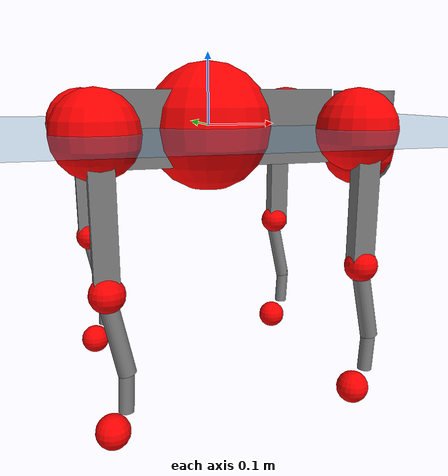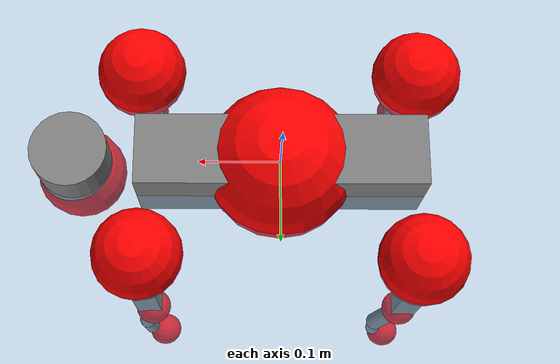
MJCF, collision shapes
<mujoco model="go2">
  <compiler angle="radian" assetdir="assets" balanceinertia="true" inertiafromgeom="false"/>

  <option timestep="0.005" density="1.2" viscosity="2e-05"/>

  <size nkey="1"/>

  <visual>
    <quality shadowsize="8192"/>
    <map shadowclip="0.5"/>
  </visual>

  <default>
    <default class="/">
      <geom contype="0" conaffinity="0" group="1" solref="-1000 -80"/>
      <site size="0.01 0.005 0.005" group="5"/>
      <general forcelimited="true" biastype="affine" gainprm="20" biasprm="0 -20 -0.5"/>
      <default class="go2">
        <joint armature="0.01" damping="0.01" frictionloss="0.2"/>
        <geom condim="1" margin="0.001"/>
        <default class="visual">
          <geom type="mesh" group="2"/>
        </default>
        <default class="collision">
          <geom group="3"/>
          <default class="foot">
            <geom size="0.022 0 0" condim="6" priority="1" friction="0.8 0.02 0.01" solimp="0.015 1 0.022"/>
          </default>
        </default>
        <default class="reward_collision_sphere">
          <geom group="5" rgba="1 0 0 1"/>
        </default>
      </default>
    </default>
  </default>

  <asset>
    <texture type="skybox" colorspace="auto" name="//unnamed_texture_0" builtin="gradient" rgb1="0.95 0.95 0.95" rgb2="0.95 0.95 0.95" width="100" height="600"/>
    <texture type="2d" colorspace="auto" name="texplane" builtin="checker" rgb1="0.345 0.575 0.748" rgb2="0.345 0.575 0.748" markrgb="1 1 1" width="512" height="512"/>
    <material name="MatPlane" class="/" texture="texplane" texuniform="true" texrepeat="2 2" specular="0.9"/>
    <material name="metal" class="/" rgba="0.9 0.95 0.95 1"/>
    <material name="black" class="/" rgba="0 0 0 1"/>
    <material name="white" class="/"/>
    <material name="gray" class="/" rgba="0.671705 0.692426 0.77427 1"/>
    <mesh name="base_0" class="/" file="base_0.obj"/>
    <mesh name="base_1" class="/" file="base_1.obj"/>
    <mesh name="base_2" class="/" file="base_2.obj"/>
    <mesh name="base_3" class="/" file="base_3.obj"/>
    <mesh name="base_4" class="/" file="base_4.obj"/>
    <mesh name="hip_0" class="/" file="hip_0.obj"/>
    <mesh name="hip_1" class="/" file="hip_1.obj"/>
    <mesh name="thigh_0" class="/" file="thigh_0.obj"/>
    <mesh name="thigh_1" class="/" file="thigh_1.obj"/>
    <mesh name="thigh_mirror_0" class="/" file="thigh_mirror_0.obj"/>
    <mesh name="thigh_mirror_1" class="/" file="thigh_mirror_1.obj"/>
    <mesh name="calf_0" class="/" file="calf_0.obj"/>
    <mesh name="calf_1" class="/" file="calf_1.obj"/>
    <mesh name="calf_mirror_0" class="/" file="calf_mirror_0.obj"/>
    <mesh name="calf_mirror_1" class="/" file="calf_mirror_1.obj"/>
    <mesh name="foot" class="/" file="foot.obj"/>
  </asset>

  <worldbody>
    <geom name="floor" class="/" size="100 100 0.125" type="plane" group="0" material="MatPlane"/>
    <light name="toplight_shadow" class="/" pos="0 0 5" dir="0.0990148 0.0990148 -0.990148" type="directional" ambient="0.04 0.04 0.04" diffuse="0.55 0.55 0.55" specular="0.12 0.12 0.12"/>
    <light name="toplight_fill" class="/" pos="0 0 5" dir="0.0990148 0.0990148 -0.990148" type="directional" castshadow="false" ambient="0.04 0.04 0.04" diffuse="0.3 0.3 0.3" specular="0.08 0.08 0.08"/>
    <body name="trunk" childclass="go2" pos="0.000150002 6.17512e-06 -0.00271565" quat="1 -6.69445e-05 -2.10473e-05 8.34008e-05">
      <inertial pos="0.0178159 0.00231261 -0.00194033" quat="-0.000970367 0.713253 -0.00171624 0.700904" mass="5.21608" diaginertia="0.0574774 0.0987591 0.0120433"/>
      <joint name="//unnamed_joint_0" type="free" armature="0" damping="0" frictionloss="0"/>
      <geom name="//unnamed_geom_1" class="visual" material="black" mesh="base_0"/>
      <geom name="//unnamed_geom_2" class="visual" material="black" mesh="base_1"/>
      <geom name="//unnamed_geom_3" class="visual" material="black" mesh="base_2"/>
      <geom name="//unnamed_geom_4" class="visual" material="white" mesh="base_3"/>
      <geom name="//unnamed_geom_5" class="visual" material="gray" mesh="base_4"/>
      <geom name="trunk_1" class="collision" size="0.173082 0.0430175 0.0524492" type="box"/>
      <geom name="trunk_2" class="collision" size="0.046008 0.0414072" pos="0.251085 0 0.00871815" type="cylinder"/>
      <geom name="trunk_3" class="collision" size="0.0432476" pos="0.258133 0 -0.0523089"/>
      <geom name="//unnamed_geom_9" class="reward_collision_sphere" size="0.0920161"/>
      <geom name="//unnamed_geom_10" class="reward_collision_sphere" size="0.0552096" pos="0.24668 0 -0.0392317"/>
      <site name="imu" pos="-0.0200464 -0.0103355 0.0407075" size="0.00920161"/>
      <camera name="track" pos="0 -2.01534 0" quat="0.707107 0.707107 0 0" mode="trackcom"/>
      <camera name="ego_camera" pos="0.274872 0 0.0392317" quat="-0.5 -0.5 0.5 0.5"/>
      <body name="FL_hip" pos="0.17052 0.0448206 0.00129943" quat="1 8.7208e-06 -1.16088e-05 1.51439e-05">
        <inertial pos="-0.00741209 0.00216162 -0.00214325" quat="0.494208 0.502729 0.503075 0.499938" mass="0.530551" diaginertia="0.000468664 0.000604269 0.000248428"/>
        <joint name="FL_hip_joint" pos="0 0 0" axis="0.999987 -0.00402412 -0.00310335" range="-1.0725 1.04737" armature="0.0103422" damping="0.0157998" frictionloss="0.15832"/>
        <geom name="//unnamed_geom_11" class="visual" material="metal" mesh="hip_0"/>
        <geom name="//unnamed_geom_12" class="visual" material="gray" mesh="hip_1"/>
        <geom name="//unnamed_geom_13" class="collision" size="0.0423274 0.0184032" pos="0 0.0806134 0" quat="0.707107 0.707107 0 0" type="cylinder"/>
        <geom name="//unnamed_geom_14" class="reward_collision_sphere" size="0.0552096" pos="0 0.0705367 0"/>
        <body name="FL_thigh" pos="-0.00116426 0.0967819 0.00303569" quat="1 -3.2311e-05 4.38593e-05 3.41623e-06">
          <inertial pos="-0.0041174 -0.0224231 -0.0303383" quat="0.82957 0.0846881 -0.0199699 0.551581" mass="0.862504" diaginertia="0.00314655 0.00607091 0.000416044"/>
          <joint name="FL_thigh_joint" pos="0 0 0" axis="-0.0144036 0.999895 -0.00147648" range="-1.62074 3.52129" armature="0.00909239" damping="0.0110939" frictionloss="0.175914"/>
          <geom name="//unnamed_geom_15" class="visual" material="metal" mesh="thigh_0"/>
          <geom name="//unnamed_geom_16" class="visual" material="gray" mesh="thigh_1"/>
          <geom name="//unnamed_geom_17" class="collision" size="0.0979971 0.011272 0.0156427" pos="0 0 -0.0928483" quat="0.707107 0 0.707107 0" type="box"/>
          <body name="FL_calf" pos="-0.00316046 0.00189841 -0.183164" quat="0.999999 -0.000631362 -0.00108552 -0.000366573">
            <inertial pos="0.00614567 -0.000472949 -0.122808" quat="0.710527 0.00147408 -0.00365018 0.703659" mass="0.179988" diaginertia="0.000790122 0.00149606 2.56598e-05"/>
            <joint name="FL_calf_joint" pos="0 0 0" axis="0.00226034 0.999943 0.0104543" range="-2.74281 -0.818894" armature="0.00868131" damping="0.0175393" frictionloss="0.159106"/>
            <geom name="//unnamed_geom_18" class="visual" material="gray" mesh="calf_0"/>
            <geom name="//unnamed_geom_19" class="visual" material="black" mesh="calf_1"/>
            <geom name="FL_calf0" class="collision" size="0.0110419 0.0552096" pos="0.007048 0 -0.0523089" quat="0.994493 0 -0.104807 0" type="cylinder"/>
            <geom name="//unnamed_geom_21" class="collision" size="0.0101218 0.0299052" pos="0.01762 0 -0.129029" quat="0.999688 0 0.0249974 0" type="cylinder"/>
            <geom name="//unnamed_geom_22" class="visual" pos="0 0 -0.185697" quat="1 0 0 0" material="black" mesh="foot"/>
            <geom name="FL_foot" class="foot" size="0.0185228" pos="-0.001762 0 -0.185697"/>
            <geom name="//unnamed_geom_24" class="reward_collision_sphere" size="0.023004"/>
            <geom name="//unnamed_geom_25" class="reward_collision_sphere" size="0.023004" pos="-0.001762 0 -0.185697"/>
            <site name="FL_foot" class="foot" pos="-0.001762 0 -0.185697" size="0.00920161"/>
          </body>
        </body>
      </body>
      <body name="FR_hip" pos="0.172357 -0.0489096 -0.000201441" quat="0.999999 0.000863372 -0.00113097 0.0005561">
        <inertial pos="-0.00437293 -0.00249873 0.000614641" quat="0.497519 0.50533 0.498788 0.498323" mass="0.511118" diaginertia="0.000456659 0.000585567 0.000241395"/>
        <joint name="FR_hip_joint" pos="0 0 0" axis="1 0.000295914 0.000629363" stiffness="0.0109385" range="-0.994305 0.998568" armature="0.00899641" damping="0.0172739" frictionloss="0.161222"/>
        <geom name="//unnamed_geom_26" class="visual" pos="0 1.1835e-09 5.07626e-08" quat="4.63268e-05 1 0 0" material="metal" mesh="hip_0"/>
        <geom name="//unnamed_geom_27" class="visual" pos="0 1.91859e-09 -1.25555e-07" quat="4.63268e-05 1 0 0" material="gray" mesh="hip_1"/>
        <geom name="//unnamed_geom_28" class="collision" size="0.0423274 0.0184032" pos="0 -0.0806134 0" quat="0.707107 0.707107 0 0" type="cylinder"/>
        <geom name="//unnamed_geom_29" class="reward_collision_sphere" size="0.0552096" pos="0 -0.0705367 0"/>
        <body name="FR_thigh" pos="0.00246868 -0.0939058 -0.000491117" quat="1 -0.00015371 -0.000162772 -7.48053e-05">
          <inertial pos="-0.0036414 0.0236892 -0.0285491" quat="0.551767 -0.0195037 0.0841357 0.829514" mass="0.900126" diaginertia="0.00313379 0.00612344 0.000448716"/>
          <joint name="FR_thigh_joint" pos="0 0 0" axis="-6.82997e-05 -0.999983 -0.0058613" range="-3.4525 1.51826" armature="0.00941511" damping="0" frictionloss="0.189862"/>
          <geom name="//unnamed_geom_30" class="visual" material="metal" mesh="thigh_mirror_0"/>
          <geom name="//unnamed_geom_31" class="visual" material="gray" mesh="thigh_mirror_1"/>
          <geom name="//unnamed_geom_32" class="collision" size="0.0979971 0.011272 0.0156427" pos="0 0 -0.0928483" quat="0.707107 0 0.707107 0" type="box"/>
          <body name="FR_calf" pos="0.00245083 0.000444853 -0.183092" quat="1 7.08506e-06 0.000422405 6.1294e-06">
            <inertial pos="0.00481247 0.00137331 -0.121329" quat="0.703498 -0.00427198 0.00144169 0.710683" mass="0.18403" diaginertia="0.000814138 0.00151544 2.66626e-05"/>
            <joint name="FR_calf_joint" pos="0 0 0" axis="0.00135214 -0.999993 -0.00349899" range="0.836222 2.66458" armature="0.00897357" damping="0.0102436" frictionloss="0.16643"/>
            <geom name="//unnamed_geom_33" class="visual" material="gray" mesh="calf_mirror_0"/>
            <geom name="//unnamed_geom_34" class="visual" material="black" mesh="calf_mirror_1"/>
            <geom name="FR_calf0" class="collision" size="0.0119621 0.0552096" pos="0.00881 0 -0.0523089" quat="0.995004 0 -0.0998334 0" type="cylinder"/>
            <geom name="//unnamed_geom_36" class="collision" size="0.0101218 0.0299052" pos="0.01762 0 -0.129029" quat="0.999688 0 0.0249974 0" type="cylinder"/>
            <geom name="//unnamed_geom_37" class="visual" pos="0 0 -0.185697" quat="1 0 0 0" material="black" mesh="foot"/>
            <geom name="FR_foot" class="foot" size="0.0224176" pos="-0.001762 0 -0.185697"/>
            <geom name="//unnamed_geom_39" class="reward_collision_sphere" size="0.023004"/>
            <geom name="//unnamed_geom_40" class="reward_collision_sphere" size="0.023004" pos="-0.001762 0 -0.185697"/>
            <site name="FR_foot" class="foot" pos="-0.001762 0 -0.185697" size="0.00920161"/>
          </body>
        </body>
      </body>
      <body name="RL_hip" pos="-0.169487 0.0498502 0.000260029" quat="0.999999 0.000134956 -0.000931039 0.000580853">
        <inertial pos="0.00297835 -0.000524678 -0.000917301" quat="0.501305 0.501173 0.502232 0.495259" mass="0.516983" diaginertia="0.000472339 0.000639761 0.000237923"/>
        <joint name="RL_hip_joint" pos="0 0 0" axis="-0.999665 -0.0207142 -0.0155259" range="-1.06046 1.01054" armature="0.00906569" damping="0" frictionloss="0.201229"/>
        <geom name="//unnamed_geom_41" class="visual" pos="-8.00152e-11 0 -1.56848e-08" quat="4.63268e-05 0 1 0" material="metal" mesh="hip_0"/>
        <geom name="//unnamed_geom_42" class="visual" pos="-1.29714e-10 0 -1.39102e-08" quat="4.63268e-05 0 1 0" material="gray" mesh="hip_1"/>
        <geom name="//unnamed_geom_43" class="collision" size="0.0423274 0.0184032" pos="0 0.0806134 0" quat="0.707107 0.707107 0 0" type="cylinder"/>
        <geom name="//unnamed_geom_44" class="reward_collision_sphere" size="0.0552096" pos="0 0.0705367 0"/>
        <body name="RL_thigh" pos="0.000402518 0.0931944 0.000118027" quat="0.999999 3.10638e-05 -0.00089738 -0.000565254">
          <inertial pos="-0.00371416 -0.0249292 -0.0286519" quat="0.827695 0.0832452 -0.0224957 0.554514" mass="0.893222" diaginertia="0.00329718 0.00609601 0.000466239"/>
          <joint name="RL_thigh_joint" pos="0 0 0" axis="0.00688453 0.999976 0.000240686" stiffness="0.013161" range="-0.52502 4.52848" armature="0.00912075" damping="0.00283279" frictionloss="0.183223"/>
          <geom name="//unnamed_geom_45" class="visual" material="metal" mesh="thigh_0"/>
          <geom name="//unnamed_geom_46" class="visual" material="gray" mesh="thigh_1"/>
          <geom name="//unnamed_geom_47" class="collision" size="0.0979971 0.011272 0.0156427" pos="0 0 -0.0928483" quat="0.707107 0 0.707107 0" type="box"/>
          <body name="RL_calf" pos="0.00286357 -0.000256781 -0.185743" quat="0.999999 0.000991881 0.000704367 0.000860141">
            <inertial pos="0.00836474 -0.00069469 -0.125836" quat="0.710838 0.00116965 -0.00430529 0.703341" mass="0.185433" diaginertia="0.000805547 0.00160278 2.7895e-05"/>
            <joint name="RL_calf_joint" pos="0 0 0" axis="-0.00646762 0.999857 -0.0156429" range="-2.71845 -0.868269" armature="0.00910364" damping="0.0135974" frictionloss="0.199648"/>
            <geom name="//unnamed_geom_48" class="visual" material="gray" mesh="calf_0"/>
            <geom name="//unnamed_geom_49" class="visual" material="black" mesh="calf_1"/>
            <geom name="RL_calf0" class="collision" size="0.0119621 0.0552096" pos="0.00881 0 -0.0523089" quat="0.995004 0 -0.0998334 0" type="cylinder"/>
            <geom name="//unnamed_geom_51" class="collision" size="0.0101218 0.0299052" pos="0.01762 0 -0.129029" quat="0.999688 0 0.0249974 0" type="cylinder"/>
            <geom name="//unnamed_geom_52" class="visual" pos="0 0 -0.185697" quat="1 0 0 0" material="black" mesh="foot"/>
            <geom name="RL_foot" class="foot" size="0.0166071" pos="-0.001762 0 -0.185697"/>
            <geom name="//unnamed_geom_54" class="reward_collision_sphere" size="0.023004"/>
            <geom name="//unnamed_geom_55" class="reward_collision_sphere" size="0.023004" pos="-0.001762 0 -0.185697"/>
            <site name="RL_foot" class="foot" pos="-0.001762 0 -0.185697" size="0.00920161"/>
          </body>
        </body>
      </body>
      <body name="RR_hip" pos="-0.170609 -0.044507 -0.000226267" quat="0.999999 -0.00121808 -0.000202165 -0.000317107">
        <inertial pos="0.00381803 -9.56584e-05 -0.00117332" quat="0.504374 0.488914 0.499846 0.50668" mass="0.512954" diaginertia="0.000468 0.00058649 0.000234341"/>
        <joint name="RR_hip_joint" pos="0 0 0" axis="-0.999966 -0.00420479 -0.0070614" range="-1.10387 1.03237" armature="0.00783156" damping="0" frictionloss="0.206354"/>
        <geom name="//unnamed_geom_56" class="visual" pos="8.44004e-11 1.1835e-09 -6.64474e-08" quat="2.14617e-09 4.63268e-05 4.63268e-05 -1" material="metal" mesh="hip_0"/>
        <geom name="//unnamed_geom_57" class="visual" pos="1.18867e-10 1.91859e-09 1.11645e-07" quat="2.14617e-09 4.63268e-05 4.63268e-05 -1" material="gray" mesh="hip_1"/>
        <geom name="//unnamed_geom_58" class="collision" size="0.0423274 0.0184032" pos="0 -0.0806134 0" quat="0.707107 0.707107 0 0" type="cylinder"/>
        <geom name="//unnamed_geom_59" class="reward_collision_sphere" size="0.0552096" pos="0 -0.0705367 0"/>
        <body name="RR_thigh" pos="0.000925577 -0.0970764 -0.00223984" quat="1 -9.59398e-05 8.78761e-05 -0.000119757">
          <inertial pos="-0.00304362 0.0243813 -0.026393" quat="0.542119 -0.0154842 0.0785399 0.83648" mass="0.879288" diaginertia="0.00309783 0.00589673 0.000437003"/>
          <joint name="RR_thigh_joint" pos="0 0 0" axis="-0.00405787 -0.99998 0.00482463" stiffness="0.0109067" range="-4.51684 0.472892" armature="0.0101882" damping="0.0145459" frictionloss="0.185438"/>
          <geom name="//unnamed_geom_60" class="visual" material="metal" mesh="thigh_mirror_0"/>
          <geom name="//unnamed_geom_61" class="visual" material="gray" mesh="thigh_mirror_1"/>
          <geom name="//unnamed_geom_62" class="collision" size="0.0979971 0.011272 0.0156427" pos="0 0 -0.0928483" quat="0.707107 0 0.707107 0" type="box"/>
          <body name="RR_calf" pos="-0.000242291 -0.00305608 -0.186709" quat="0.999999 -0.000557684 -0.00120238 0.000605136">
            <inertial pos="0.007051 0.000274564 -0.124005" quat="0.708117 -0.0139748 0.00252172 0.705953" mass="0.177783" diaginertia="0.00076429 0.0014848 2.67601e-05"/>
            <joint name="RR_calf_joint" pos="0 0 0" axis="0.00697014 -0.999948 -0.00740055" stiffness="0.00955472" range="0.892756 2.7787" armature="0.00927039" damping="0.0160733" frictionloss="0.174107"/>
            <geom name="//unnamed_geom_63" class="visual" material="gray" mesh="calf_mirror_0"/>
            <geom name="//unnamed_geom_64" class="visual" material="black" mesh="calf_mirror_1"/>
            <geom name="RR_calf0" class="collision" size="0.0119621 0.0552096" pos="0.00881 0 -0.0523089" quat="0.995004 0 -0.0998334 0" type="cylinder"/>
            <geom name="//unnamed_geom_66" class="collision" size="0.0101218 0.0299052" pos="0.01762 0 -0.129029" quat="0.999688 0 0.0249974 0" type="cylinder"/>
            <geom name="//unnamed_geom_67" class="visual" pos="0 0 -0.185697" quat="1 0 0 0" material="black" mesh="foot"/>
            <geom name="RR_foot" class="foot" size="0.0197251" pos="-0.001762 0 -0.185697"/>
            <geom name="//unnamed_geom_69" class="reward_collision_sphere" size="0.023004"/>
            <geom name="//unnamed_geom_70" class="reward_collision_sphere" size="0.023004" pos="-0.001762 0 -0.185697"/>
            <site name="RR_foot" class="foot" pos="-0.001762 0 -0.185697" size="0.00920161"/>
          </body>
        </body>
      </body>
    </body>
  </worldbody>

  <contact>
    <pair class="/" geom1="floor" geom2="FL_foot" name="//unnamed_contact_0"/>
    <pair class="/" geom1="floor" geom2="FR_foot" name="//unnamed_contact_1"/>
    <pair class="/" geom1="floor" geom2="RL_foot" name="//unnamed_contact_2"/>
    <pair class="/" geom1="floor" geom2="RR_foot" name="//unnamed_contact_3"/>
  </contact>

  <actuator>
    <general name="FL_hip" class="/" joint="FL_hip_joint" forcerange="-20.0301 20.0301" gainprm="19.6102" biasprm="0 -19.6102 -0.47318"/>
    <general name="FL_thigh" class="/" joint="FL_thigh_joint" forcerange="-20.2596 20.2596" gainprm="19.6102" biasprm="0 -19.6102 -0.47318"/>
    <general name="FL_calf" class="/" joint="FL_calf_joint" forcerange="-41.2468 41.2468" gainprm="19.6102" biasprm="0 -19.6102 -0.47318"/>
    <general name="FR_hip" class="/" joint="FR_hip_joint" forcerange="-21.7525 21.7525" gainprm="19.6102" biasprm="0 -19.6102 -0.47318"/>
    <general name="FR_thigh" class="/" joint="FR_thigh_joint" forcerange="-22.2832 22.2832" gainprm="19.6102" biasprm="0 -19.6102 -0.47318"/>
    <general name="FR_calf" class="/" joint="FR_calf_joint" forcerange="-39.4337 39.4337" gainprm="19.6102" biasprm="0 -19.6102 -0.47318"/>
    <general name="RL_hip" class="/" joint="RL_hip_joint" forcerange="-23.9103 23.9103" gainprm="19.6102" biasprm="0 -19.6102 -0.47318"/>
    <general name="RL_thigh" class="/" joint="RL_thigh_joint" forcerange="-21.8441 21.8441" gainprm="19.6102" biasprm="0 -19.6102 -0.47318"/>
    <general name="RL_calf" class="/" joint="RL_calf_joint" forcerange="-38.7575 38.7575" gainprm="19.6102" biasprm="0 -19.6102 -0.47318"/>
    <general name="RR_hip" class="/" joint="RR_hip_joint" forcerange="-20.1525 20.1525" gainprm="19.6102" biasprm="0 -19.6102 -0.47318"/>
    <general name="RR_thigh" class="/" joint="RR_thigh_joint" forcerange="-22.5873 22.5873" gainprm="19.6102" biasprm="0 -19.6102 -0.47318"/>
    <general name="RR_calf" class="/" joint="RR_calf_joint" forcerange="-43.1928 43.1928" gainprm="19.6102" biasprm="0 -19.6102 -0.47318"/>
  </actuator>

  <sensor>
    <gyro site="imu" name="imu_angular_velocity"/>
    <velocimeter site="imu" name="imu_linear_velocity"/>
    <framelinvel objtype="site" objname="FL_foot" name="FL_foot_global_linear_velocity"/>
    <framelinvel objtype="site" objname="FR_foot" name="FR_foot_global_linear_velocity"/>
    <framelinvel objtype="site" objname="RL_foot" name="RL_foot_global_linear_velocity"/>
    <framelinvel objtype="site" objname="RR_foot" name="RR_foot_global_linear_velocity"/>
  </sensor>

  <keyframe>
    <key name="home" qpos="0 0 0.325 1 0 0 0 0.1 0.8 -1.5 -0.1 -0.8 1.5 -0.1 0.8 -1.5 0.1 -0.8 1.5"/>
  </keyframe>
</mujoco>
